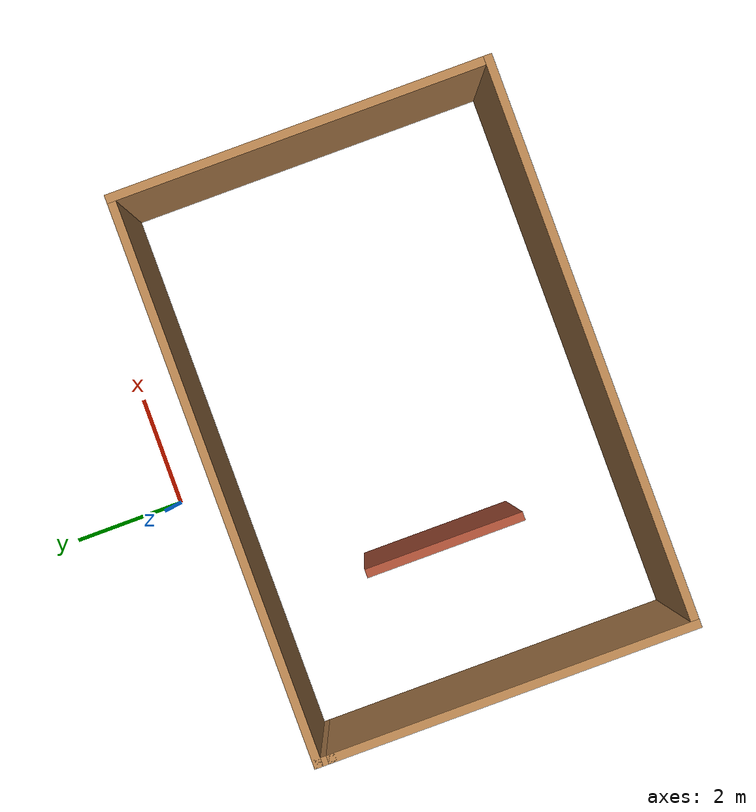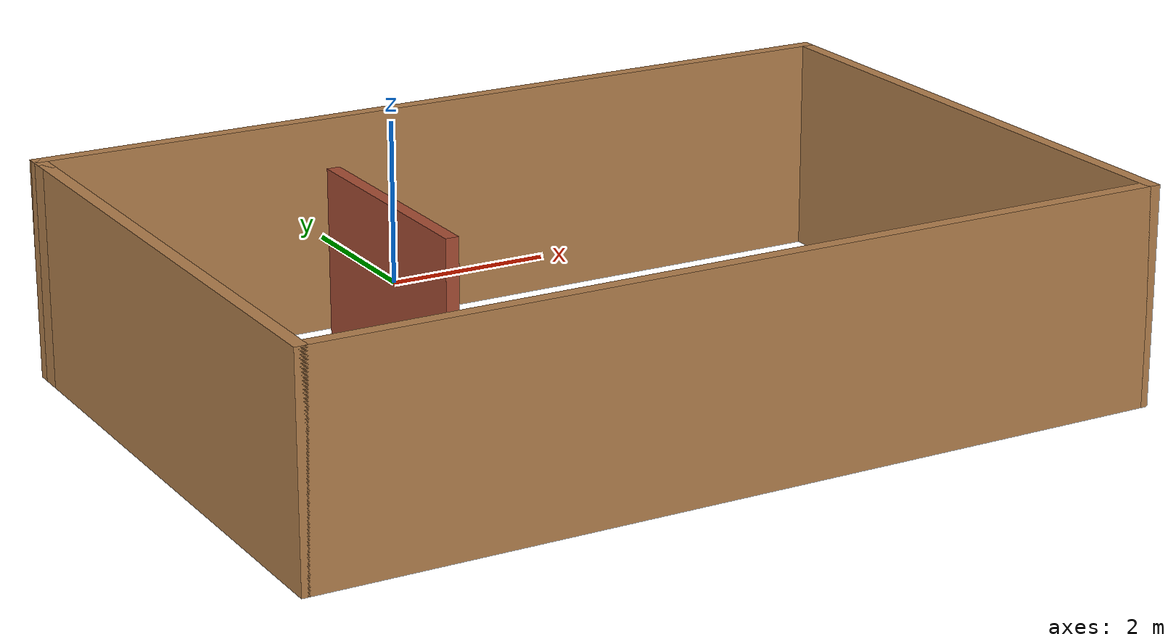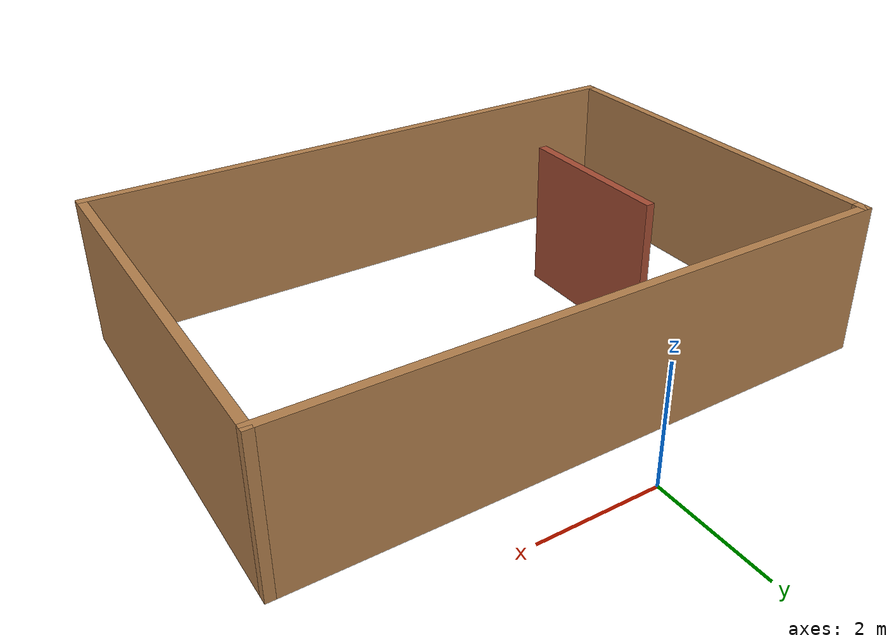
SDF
<?xml version='1.0'?>
<sdf version='1.7'>
  <model name='test_models'>
    <pose>0.205 -3.8375 0 0 -0 0</pose>
    <link name='Wall_0'>
      <collision name='Wall_0_Collision'>
        <geometry>
          <box>
            <size>6.5 0.15 2.5</size>
          </box>
        </geometry>
        <pose>0 0 1.25 0 -0 0</pose>
      </collision>
      <visual name='Wall_0_Visual'>
        <pose>0 0 1.25 0 -0 0</pose>
        <geometry>
          <box>
            <size>6.5 0.15 2.5</size>
          </box>
        </geometry>
        <material>
          <script>
            <uri>file://media/materials/scripts/gazebo.material</uri>
            <name>Gazebo/Wood</name>
          </script>
          <ambient>1 1 1 1</ambient>
        </material>
        <meta>
          <layer>0</layer>
        </meta>
      </visual>
      <pose>-4.925 -0.5875 0 0 -0 -1.5708</pose>
    </link>
    <link name='Wall_1'>
      <collision name='Wall_1_Collision'>
        <geometry>
          <box>
            <size>10 0.15 2.5</size>
          </box>
        </geometry>
        <pose>0 0 1.25 0 -0 0</pose>
      </collision>
      <visual name='Wall_1_Visual'>
        <pose>0 0 1.25 0 -0 0</pose>
        <geometry>
          <box>
            <size>10 0.15 2.5</size>
          </box>
        </geometry>
        <material>
          <script>
            <uri>file://media/materials/scripts/gazebo.material</uri>
            <name>Gazebo/Wood</name>
          </script>
          <ambient>1 1 1 1</ambient>
        </material>
        <meta>
          <layer>0</layer>
        </meta>
      </visual>
      <pose>-0 -3.7625 0 0 -0 0</pose>
    </link>
    <link name='Wall_2'>
      <collision name='Wall_2_Collision'>
        <geometry>
          <box>
            <size>6.75 0.15 2.5</size>
          </box>
        </geometry>
        <pose>0 0 1.25 0 -0 0</pose>
      </collision>
      <visual name='Wall_2_Visual'>
        <pose>0 0 1.25 0 -0 0</pose>
        <geometry>
          <box>
            <size>6.75 0.15 2.5</size>
          </box>
        </geometry>
        <material>
          <script>
            <uri>file://media/materials/scripts/gazebo.material</uri>
            <name>Gazebo/Wood</name>
          </script>
          <ambient>1 1 1 1</ambient>
        </material>
        <meta>
          <layer>0</layer>
        </meta>
      </visual>
      <pose>4.925 -0.4625 0 0 -0 1.5708</pose>
    </link>
    <link name='Wall_3'>
      <collision name='Wall_3_Collision'>
        <geometry>
          <box>
            <size>10 0.15 2.5</size>
          </box>
        </geometry>
        <pose>0 0 1.25 0 -0 0</pose>
      </collision>
      <visual name='Wall_3_Visual'>
        <pose>0 0 1.25 0 -0 0</pose>
        <geometry>
          <box>
            <size>10 0.15 2.5</size>
          </box>
        </geometry>
        <material>
          <script>
            <uri>file://media/materials/scripts/gazebo.material</uri>
            <name>Gazebo/Wood</name>
          </script>
          <ambient>1 1 1 1</ambient>
        </material>
        <meta>
          <layer>0</layer>
        </meta>
      </visual>
      <pose>-0 2.8375 0 0 -0 3.14159</pose>
    </link>
    <link name='Wall_4'>
      <collision name='Wall_4_Collision'>
        <geometry>
          <box>
            <size>0.4 0.15 2.5</size>
          </box>
        </geometry>
        <pose>0 0 1.25 0 -0 0</pose>
      </collision>
      <visual name='Wall_4_Visual'>
        <pose>0 0 1.25 0 -0 0</pose>
        <geometry>
          <box>
            <size>0.4 0.15 2.5</size>
          </box>
        </geometry>
        <material>
          <script>
            <uri>file://media/materials/scripts/gazebo.material</uri>
            <name>Gazebo/Wood</name>
          </script>
          <ambient>1 1 1 1</ambient>
        </material>
        <meta>
          <layer>0</layer>
        </meta>
      </visual>
      <pose>-4.925 2.7125 0 0 -0 -1.5708</pose>
    </link>
    <link name='Wall_6'>
      <collision name='Wall_6_Collision'>
        <geometry>
          <box>
            <size>2.75 0.15 2.5</size>
          </box>
        </geometry>
        <pose>0 0 1.25 0 -0 0</pose>
      </collision>
      <visual name='Wall_6_Visual'>
        <pose>0 0 1.25 0 -0 0</pose>
        <geometry>
          <box>
            <size>2.75 0.15 2.5</size>
          </box>
        </geometry>
        <material>
          <script>
            <uri>file://media/materials/scripts/gazebo.material</uri>
            <name>Gazebo/Bricks</name>
          </script>
          <ambient>1 1 1 1</ambient>
        </material>
        <meta>
          <layer>0</layer>
        </meta>
      </visual>
      <pose>-2.285 -0.3525 0 0 -0 -1.5708</pose>
    </link>
    <static>1</static>
  </model>
</sdf>
